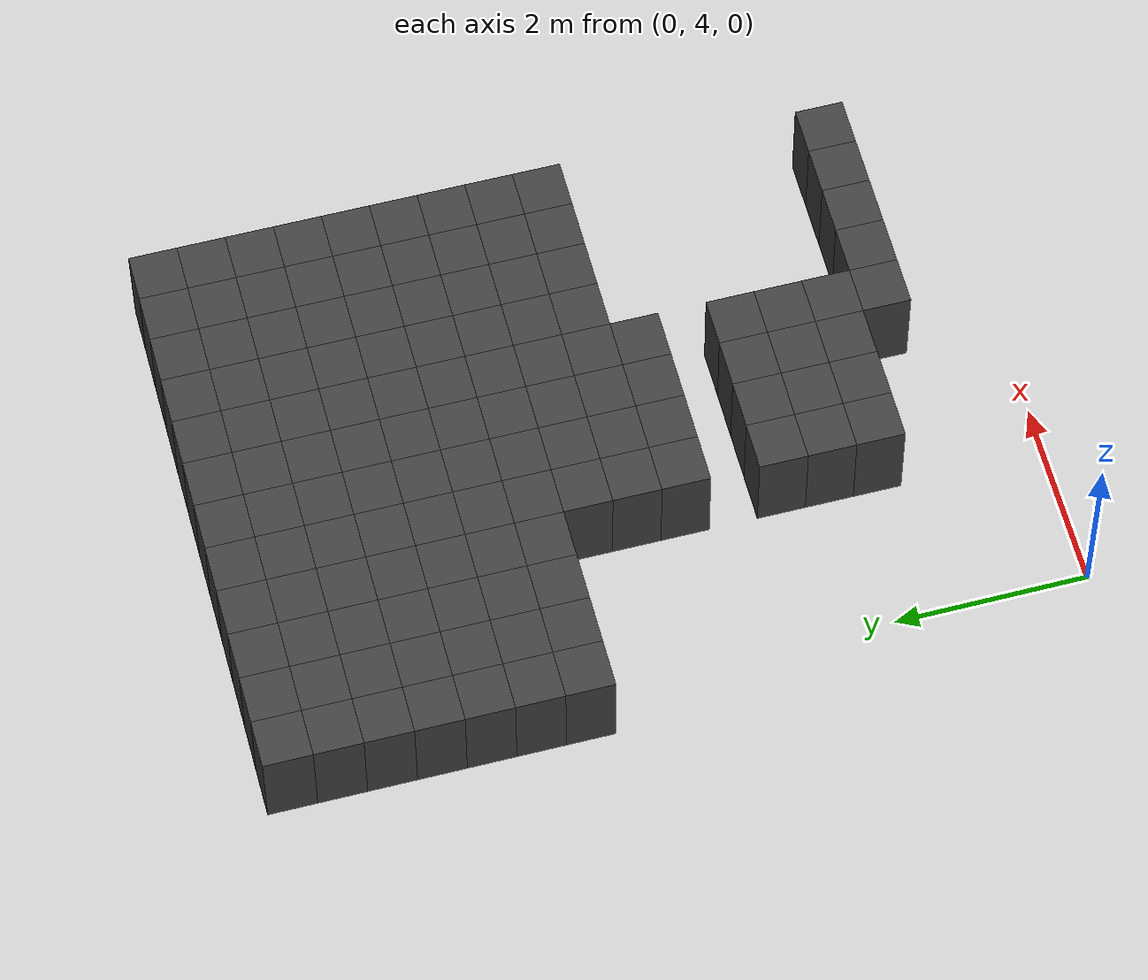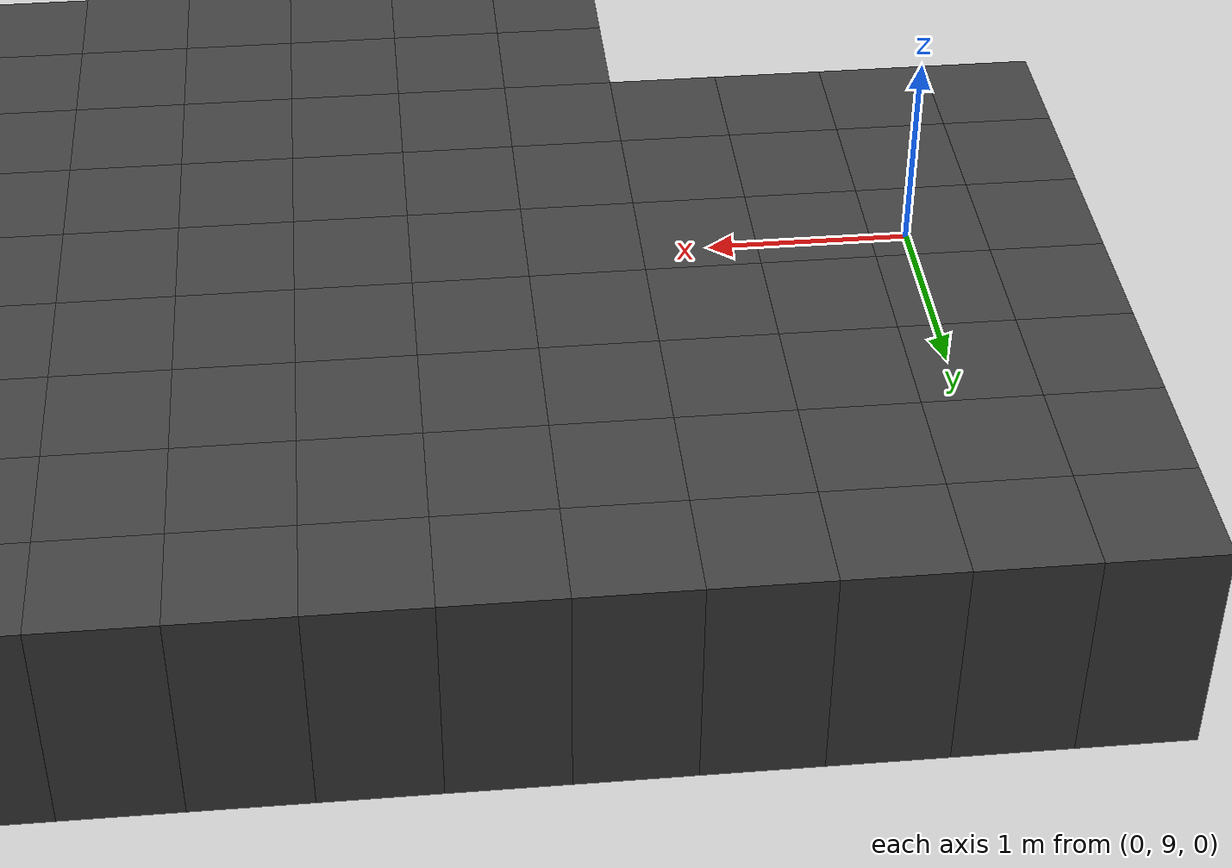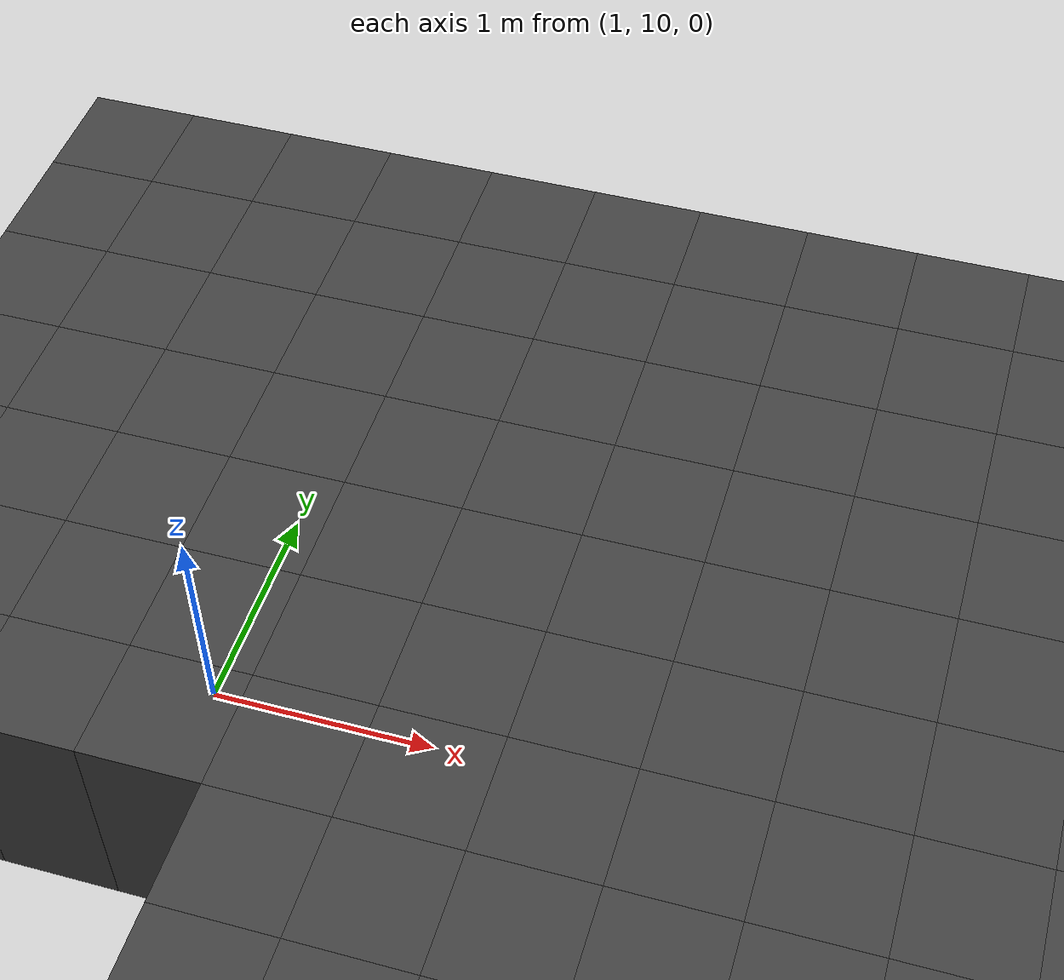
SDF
<sdf version="1.7">
 <world name="map_12885">
  <model name="ground_plane">
   <static>true</static>
   <link name="link">
    <collision name="collision">
     <geometry><plane><normal>0 0 1</normal><size>200 200</size></plane></geometry>
    </collision>
    <visual name="visual">
     <geometry><plane><normal>0 0 1</normal><size>200 200</size></plane></geometry>
     <material><ambient>0.8 0.8 0.8 1</ambient><diffuse>0.8 0.8 0.8 1</diffuse></material>
    </visual>
   </link>
  </model>
  <model name="maze_environment">
   <static>true</static>
   <link name="wall_24">
    <pose>-0.250 12.250 0.500 0 0 0</pose>
    <collision name="col"><geometry><box><size>0.5 0.5 1.0</size></box></geometry></collision>
    <visual name="vis">
     <geometry><box><size>0.5 0.5 1.0</size></box></geometry>
     <material><ambient>0.15 0.15 0.15 1</ambient><diffuse>0.25 0.25 0.25 1</diffuse></material>
    </visual>
   </link>
   <link name="wall_25">
    <pose>0.250 12.250 0.500 0 0 0</pose>
    <collision name="col"><geometry><box><size>0.5 0.5 1.0</size></box></geometry></collision>
    <visual name="vis">
     <geometry><box><size>0.5 0.5 1.0</size></box></geometry>
     <material><ambient>0.15 0.15 0.15 1</ambient><diffuse>0.25 0.25 0.25 1</diffuse></material>
    </visual>
   </link>
   <link name="wall_26">
    <pose>0.750 12.250 0.500 0 0 0</pose>
    <collision name="col"><geometry><box><size>0.5 0.5 1.0</size></box></geometry></collision>
    <visual name="vis">
     <geometry><box><size>0.5 0.5 1.0</size></box></geometry>
     <material><ambient>0.15 0.15 0.15 1</ambient><diffuse>0.25 0.25 0.25 1</diffuse></material>
    </visual>
   </link>
   <link name="wall_27">
    <pose>1.250 12.250 0.500 0 0 0</pose>
    <collision name="col"><geometry><box><size>0.5 0.5 1.0</size></box></geometry></collision>
    <visual name="vis">
     <geometry><box><size>0.5 0.5 1.0</size></box></geometry>
     <material><ambient>0.15 0.15 0.15 1</ambient><diffuse>0.25 0.25 0.25 1</diffuse></material>
    </visual>
   </link>
   <link name="wall_28">
    <pose>1.750 12.250 0.500 0 0 0</pose>
    <collision name="col"><geometry><box><size>0.5 0.5 1.0</size></box></geometry></collision>
    <visual name="vis">
     <geometry><box><size>0.5 0.5 1.0</size></box></geometry>
     <material><ambient>0.15 0.15 0.15 1</ambient><diffuse>0.25 0.25 0.25 1</diffuse></material>
    </visual>
   </link>
   <link name="wall_29">
    <pose>2.250 12.250 0.500 0 0 0</pose>
    <collision name="col"><geometry><box><size>0.5 0.5 1.0</size></box></geometry></collision>
    <visual name="vis">
     <geometry><box><size>0.5 0.5 1.0</size></box></geometry>
     <material><ambient>0.15 0.15 0.15 1</ambient><diffuse>0.25 0.25 0.25 1</diffuse></material>
    </visual>
   </link>
   <link name="wall_30">
    <pose>2.750 12.250 0.500 0 0 0</pose>
    <collision name="col"><geometry><box><size>0.5 0.5 1.0</size></box></geometry></collision>
    <visual name="vis">
     <geometry><box><size>0.5 0.5 1.0</size></box></geometry>
     <material><ambient>0.15 0.15 0.15 1</ambient><diffuse>0.25 0.25 0.25 1</diffuse></material>
    </visual>
   </link>
   <link name="wall_31">
    <pose>3.250 12.250 0.500 0 0 0</pose>
    <collision name="col"><geometry><box><size>0.5 0.5 1.0</size></box></geometry></collision>
    <visual name="vis">
     <geometry><box><size>0.5 0.5 1.0</size></box></geometry>
     <material><ambient>0.15 0.15 0.15 1</ambient><diffuse>0.25 0.25 0.25 1</diffuse></material>
    </visual>
   </link>
   <link name="wall_32">
    <pose>3.750 12.250 0.500 0 0 0</pose>
    <collision name="col"><geometry><box><size>0.5 0.5 1.0</size></box></geometry></collision>
    <visual name="vis">
     <geometry><box><size>0.5 0.5 1.0</size></box></geometry>
     <material><ambient>0.15 0.15 0.15 1</ambient><diffuse>0.25 0.25 0.25 1</diffuse></material>
    </visual>
   </link>
   <link name="wall_33">
    <pose>4.250 12.250 0.500 0 0 0</pose>
    <collision name="col"><geometry><box><size>0.5 0.5 1.0</size></box></geometry></collision>
    <visual name="vis">
     <geometry><box><size>0.5 0.5 1.0</size></box></geometry>
     <material><ambient>0.15 0.15 0.15 1</ambient><diffuse>0.25 0.25 0.25 1</diffuse></material>
    </visual>
   </link>
   <link name="wall_34">
    <pose>4.750 12.250 0.500 0 0 0</pose>
    <collision name="col"><geometry><box><size>0.5 0.5 1.0</size></box></geometry></collision>
    <visual name="vis">
     <geometry><box><size>0.5 0.5 1.0</size></box></geometry>
     <material><ambient>0.15 0.15 0.15 1</ambient><diffuse>0.25 0.25 0.25 1</diffuse></material>
    </visual>
   </link>
   <link name="wall_35">
    <pose>5.250 12.250 0.500 0 0 0</pose>
    <collision name="col"><geometry><box><size>0.5 0.5 1.0</size></box></geometry></collision>
    <visual name="vis">
     <geometry><box><size>0.5 0.5 1.0</size></box></geometry>
     <material><ambient>0.15 0.15 0.15 1</ambient><diffuse>0.25 0.25 0.25 1</diffuse></material>
    </visual>
   </link>
   <link name="wall_71">
    <pose>-0.250 11.750 0.500 0 0 0</pose>
    <collision name="col"><geometry><box><size>0.5 0.5 1.0</size></box></geometry></collision>
    <visual name="vis">
     <geometry><box><size>0.5 0.5 1.0</size></box></geometry>
     <material><ambient>0.15 0.15 0.15 1</ambient><diffuse>0.25 0.25 0.25 1</diffuse></material>
    </visual>
   </link>
   <link name="wall_72">
    <pose>0.250 11.750 0.500 0 0 0</pose>
    <collision name="col"><geometry><box><size>0.5 0.5 1.0</size></box></geometry></collision>
    <visual name="vis">
     <geometry><box><size>0.5 0.5 1.0</size></box></geometry>
     <material><ambient>0.15 0.15 0.15 1</ambient><diffuse>0.25 0.25 0.25 1</diffuse></material>
    </visual>
   </link>
   <link name="wall_73">
    <pose>0.750 11.750 0.500 0 0 0</pose>
    <collision name="col"><geometry><box><size>0.5 0.5 1.0</size></box></geometry></collision>
    <visual name="vis">
     <geometry><box><size>0.5 0.5 1.0</size></box></geometry>
     <material><ambient>0.15 0.15 0.15 1</ambient><diffuse>0.25 0.25 0.25 1</diffuse></material>
    </visual>
   </link>
   <link name="wall_74">
    <pose>1.250 11.750 0.500 0 0 0</pose>
    <collision name="col"><geometry><box><size>0.5 0.5 1.0</size></box></geometry></collision>
    <visual name="vis">
     <geometry><box><size>0.5 0.5 1.0</size></box></geometry>
     <material><ambient>0.15 0.15 0.15 1</ambient><diffuse>0.25 0.25 0.25 1</diffuse></material>
    </visual>
   </link>
   <link name="wall_75">
    <pose>1.750 11.750 0.500 0 0 0</pose>
    <collision name="col"><geometry><box><size>0.5 0.5 1.0</size></box></geometry></collision>
    <visual name="vis">
     <geometry><box><size>0.5 0.5 1.0</size></box></geometry>
     <material><ambient>0.15 0.15 0.15 1</ambient><diffuse>0.25 0.25 0.25 1</diffuse></material>
    </visual>
   </link>
   <link name="wall_76">
    <pose>2.250 11.750 0.500 0 0 0</pose>
    <collision name="col"><geometry><box><size>0.5 0.5 1.0</size></box></geometry></collision>
    <visual name="vis">
     <geometry><box><size>0.5 0.5 1.0</size></box></geometry>
     <material><ambient>0.15 0.15 0.15 1</ambient><diffuse>0.25 0.25 0.25 1</diffuse></material>
    </visual>
   </link>
   <link name="wall_77">
    <pose>2.750 11.750 0.500 0 0 0</pose>
    <collision name="col"><geometry><box><size>0.5 0.5 1.0</size></box></geometry></collision>
    <visual name="vis">
     <geometry><box><size>0.5 0.5 1.0</size></box></geometry>
     <material><ambient>0.15 0.15 0.15 1</ambient><diffuse>0.25 0.25 0.25 1</diffuse></material>
    </visual>
   </link>
   <link name="wall_78">
    <pose>3.250 11.750 0.500 0 0 0</pose>
    <collision name="col"><geometry><box><size>0.5 0.5 1.0</size></box></geometry></collision>
    <visual name="vis">
     <geometry><box><size>0.5 0.5 1.0</size></box></geometry>
     <material><ambient>0.15 0.15 0.15 1</ambient><diffuse>0.25 0.25 0.25 1</diffuse></material>
    </visual>
   </link>
   <link name="wall_79">
    <pose>3.750 11.750 0.500 0 0 0</pose>
    <collision name="col"><geometry><box><size>0.5 0.5 1.0</size></box></geometry></collision>
    <visual name="vis">
     <geometry><box><size>0.5 0.5 1.0</size></box></geometry>
     <material><ambient>0.15 0.15 0.15 1</ambient><diffuse>0.25 0.25 0.25 1</diffuse></material>
    </visual>
   </link>
   <link name="wall_80">
    <pose>4.250 11.750 0.500 0 0 0</pose>
    <collision name="col"><geometry><box><size>0.5 0.5 1.0</size></box></geometry></collision>
    <visual name="vis">
     <geometry><box><size>0.5 0.5 1.0</size></box></geometry>
     <material><ambient>0.15 0.15 0.15 1</ambient><diffuse>0.25 0.25 0.25 1</diffuse></material>
    </visual>
   </link>
   <link name="wall_81">
    <pose>4.750 11.750 0.500 0 0 0</pose>
    <collision name="col"><geometry><box><size>0.5 0.5 1.0</size></box></geometry></collision>
    <visual name="vis">
     <geometry><box><size>0.5 0.5 1.0</size></box></geometry>
     <material><ambient>0.15 0.15 0.15 1</ambient><diffuse>0.25 0.25 0.25 1</diffuse></material>
    </visual>
   </link>
   <link name="wall_82">
    <pose>5.250 11.750 0.500 0 0 0</pose>
    <collision name="col"><geometry><box><size>0.5 0.5 1.0</size></box></geometry></collision>
    <visual name="vis">
     <geometry><box><size>0.5 0.5 1.0</size></box></geometry>
     <material><ambient>0.15 0.15 0.15 1</ambient><diffuse>0.25 0.25 0.25 1</diffuse></material>
    </visual>
   </link>
   <link name="wall_118">
    <pose>-0.250 11.250 0.500 0 0 0</pose>
    <collision name="col"><geometry><box><size>0.5 0.5 1.0</size></box></geometry></collision>
    <visual name="vis">
     <geometry><box><size>0.5 0.5 1.0</size></box></geometry>
     <material><ambient>0.15 0.15 0.15 1</ambient><diffuse>0.25 0.25 0.25 1</diffuse></material>
    </visual>
   </link>
   <link name="wall_119">
    <pose>0.250 11.250 0.500 0 0 0</pose>
    <collision name="col"><geometry><box><size>0.5 0.5 1.0</size></box></geometry></collision>
    <visual name="vis">
     <geometry><box><size>0.5 0.5 1.0</size></box></geometry>
     <material><ambient>0.15 0.15 0.15 1</ambient><diffuse>0.25 0.25 0.25 1</diffuse></material>
    </visual>
   </link>
   <link name="wall_120">
    <pose>0.750 11.250 0.500 0 0 0</pose>
    <collision name="col"><geometry><box><size>0.5 0.5 1.0</size></box></geometry></collision>
    <visual name="vis">
     <geometry><box><size>0.5 0.5 1.0</size></box></geometry>
     <material><ambient>0.15 0.15 0.15 1</ambient><diffuse>0.25 0.25 0.25 1</diffuse></material>
    </visual>
   </link>
   <link name="wall_121">
    <pose>1.250 11.250 0.500 0 0 0</pose>
    <collision name="col"><geometry><box><size>0.5 0.5 1.0</size></box></geometry></collision>
    <visual name="vis">
     <geometry><box><size>0.5 0.5 1.0</size></box></geometry>
     <material><ambient>0.15 0.15 0.15 1</ambient><diffuse>0.25 0.25 0.25 1</diffuse></material>
    </visual>
   </link>
   <link name="wall_122">
    <pose>1.750 11.250 0.500 0 0 0</pose>
    <collision name="col"><geometry><box><size>0.5 0.5 1.0</size></box></geometry></collision>
    <visual name="vis">
     <geometry><box><size>0.5 0.5 1.0</size></box></geometry>
     <material><ambient>0.15 0.15 0.15 1</ambient><diffuse>0.25 0.25 0.25 1</diffuse></material>
    </visual>
   </link>
   <link name="wall_123">
    <pose>2.250 11.250 0.500 0 0 0</pose>
    <collision name="col"><geometry><box><size>0.5 0.5 1.0</size></box></geometry></collision>
    <visual name="vis">
     <geometry><box><size>0.5 0.5 1.0</size></box></geometry>
     <material><ambient>0.15 0.15 0.15 1</ambient><diffuse>0.25 0.25 0.25 1</diffuse></material>
    </visual>
   </link>
   <link name="wall_124">
    <pose>2.750 11.250 0.500 0 0 0</pose>
    <collision name="col"><geometry><box><size>0.5 0.5 1.0</size></box></geometry></collision>
    <visual name="vis">
     <geometry><box><size>0.5 0.5 1.0</size></box></geometry>
     <material><ambient>0.15 0.15 0.15 1</ambient><diffuse>0.25 0.25 0.25 1</diffuse></material>
    </visual>
   </link>
   <link name="wall_125">
    <pose>3.250 11.250 0.500 0 0 0</pose>
    <collision name="col"><geometry><box><size>0.5 0.5 1.0</size></box></geometry></collision>
    <visual name="vis">
     <geometry><box><size>0.5 0.5 1.0</size></box></geometry>
     <material><ambient>0.15 0.15 0.15 1</ambient><diffuse>0.25 0.25 0.25 1</diffuse></material>
    </visual>
   </link>
   <link name="wall_126">
    <pose>3.750 11.250 0.500 0 0 0</pose>
    <collision name="col"><geometry><box><size>0.5 0.5 1.0</size></box></geometry></collision>
    <visual name="vis">
     <geometry><box><size>0.5 0.5 1.0</size></box></geometry>
     <material><ambient>0.15 0.15 0.15 1</ambient><diffuse>0.25 0.25 0.25 1</diffuse></material>
    </visual>
   </link>
   <link name="wall_127">
    <pose>4.250 11.250 0.500 0 0 0</pose>
    <collision name="col"><geometry><box><size>0.5 0.5 1.0</size></box></geometry></collision>
    <visual name="vis">
     <geometry><box><size>0.5 0.5 1.0</size></box></geometry>
     <material><ambient>0.15 0.15 0.15 1</ambient><diffuse>0.25 0.25 0.25 1</diffuse></material>
    </visual>
   </link>
   <link name="wall_128">
    <pose>4.750 11.250 0.500 0 0 0</pose>
    <collision name="col"><geometry><box><size>0.5 0.5 1.0</size></box></geometry></collision>
    <visual name="vis">
     <geometry><box><size>0.5 0.5 1.0</size></box></geometry>
     <material><ambient>0.15 0.15 0.15 1</ambient><diffuse>0.25 0.25 0.25 1</diffuse></material>
    </visual>
   </link>
   <link name="wall_129">
    <pose>5.250 11.250 0.500 0 0 0</pose>
    <collision name="col"><geometry><box><size>0.5 0.5 1.0</size></box></geometry></collision>
    <visual name="vis">
     <geometry><box><size>0.5 0.5 1.0</size></box></geometry>
     <material><ambient>0.15 0.15 0.15 1</ambient><diffuse>0.25 0.25 0.25 1</diffuse></material>
    </visual>
   </link>
   <link name="wall_165">
    <pose>-0.250 10.750 0.500 0 0 0</pose>
    <collision name="col"><geometry><box><size>0.5 0.5 1.0</size></box></geometry></collision>
    <visual name="vis">
     <geometry><box><size>0.5 0.5 1.0</size></box></geometry>
     <material><ambient>0.15 0.15 0.15 1</ambient><diffuse>0.25 0.25 0.25 1</diffuse></material>
    </visual>
   </link>
   <link name="wall_166">
    <pose>0.250 10.750 0.500 0 0 0</pose>
    <collision name="col"><geometry><box><size>0.5 0.5 1.0</size></box></geometry></collision>
    <visual name="vis">
     <geometry><box><size>0.5 0.5 1.0</size></box></geometry>
     <material><ambient>0.15 0.15 0.15 1</ambient><diffuse>0.25 0.25 0.25 1</diffuse></material>
    </visual>
   </link>
   <link name="wall_167">
    <pose>0.750 10.750 0.500 0 0 0</pose>
    <collision name="col"><geometry><box><size>0.5 0.5 1.0</size></box></geometry></collision>
    <visual name="vis">
     <geometry><box><size>0.5 0.5 1.0</size></box></geometry>
     <material><ambient>0.15 0.15 0.15 1</ambient><diffuse>0.25 0.25 0.25 1</diffuse></material>
    </visual>
   </link>
   <link name="wall_168">
    <pose>1.250 10.750 0.500 0 0 0</pose>
    <collision name="col"><geometry><box><size>0.5 0.5 1.0</size></box></geometry></collision>
    <visual name="vis">
     <geometry><box><size>0.5 0.5 1.0</size></box></geometry>
     <material><ambient>0.15 0.15 0.15 1</ambient><diffuse>0.25 0.25 0.25 1</diffuse></material>
    </visual>
   </link>
   <link name="wall_169">
    <pose>1.750 10.750 0.500 0 0 0</pose>
    <collision name="col"><geometry><box><size>0.5 0.5 1.0</size></box></geometry></collision>
    <visual name="vis">
     <geometry><box><size>0.5 0.5 1.0</size></box></geometry>
     <material><ambient>0.15 0.15 0.15 1</ambient><diffuse>0.25 0.25 0.25 1</diffuse></material>
    </visual>
   </link>
   <link name="wall_170">
    <pose>2.250 10.750 0.500 0 0 0</pose>
    <collision name="col"><geometry><box><size>0.5 0.5 1.0</size></box></geometry></collision>
    <visual name="vis">
     <geometry><box><size>0.5 0.5 1.0</size></box></geometry>
     <material><ambient>0.15 0.15 0.15 1</ambient><diffuse>0.25 0.25 0.25 1</diffuse></material>
    </visual>
   </link>
   <link name="wall_171">
    <pose>2.750 10.750 0.500 0 0 0</pose>
    <collision name="col"><geometry><box><size>0.5 0.5 1.0</size></box></geometry></collision>
    <visual name="vis">
     <geometry><box><size>0.5 0.5 1.0</size></box></geometry>
     <material><ambient>0.15 0.15 0.15 1</ambient><diffuse>0.25 0.25 0.25 1</diffuse></material>
    </visual>
   </link>
   <link name="wall_172">
    <pose>3.250 10.750 0.500 0 0 0</pose>
    <collision name="col"><geometry><box><size>0.5 0.5 1.0</size></box></geometry></collision>
    <visual name="vis">
     <geometry><box><size>0.5 0.5 1.0</size></box></geometry>
     <material><ambient>0.15 0.15 0.15 1</ambient><diffuse>0.25 0.25 0.25 1</diffuse></material>
    </visual>
   </link>
   <link name="wall_173">
    <pose>3.750 10.750 0.500 0 0 0</pose>
    <collision name="col"><geometry><box><size>0.5 0.5 1.0</size></box></geometry></collision>
    <visual name="vis">
     <geometry><box><size>0.5 0.5 1.0</size></box></geometry>
     <material><ambient>0.15 0.15 0.15 1</ambient><diffuse>0.25 0.25 0.25 1</diffuse></material>
    </visual>
   </link>
   <link name="wall_174">
    <pose>4.250 10.750 0.500 0 0 0</pose>
    <collision name="col"><geometry><box><size>0.5 0.5 1.0</size></box></geometry></collision>
    <visual name="vis">
     <geometry><box><size>0.5 0.5 1.0</size></box></geometry>
     <material><ambient>0.15 0.15 0.15 1</ambient><diffuse>0.25 0.25 0.25 1</diffuse></material>
    </visual>
   </link>
   <link name="wall_175">
    <pose>4.750 10.750 0.500 0 0 0</pose>
    <collision name="col"><geometry><box><size>0.5 0.5 1.0</size></box></geometry></collision>
    <visual name="vis">
     <geometry><box><size>0.5 0.5 1.0</size></box></geometry>
     <material><ambient>0.15 0.15 0.15 1</ambient><diffuse>0.25 0.25 0.25 1</diffuse></material>
    </visual>
   </link>
   <link name="wall_176">
    <pose>5.250 10.750 0.500 0 0 0</pose>
    <collision name="col"><geometry><box><size>0.5 0.5 1.0</size></box></geometry></collision>
    <visual name="vis">
     <geometry><box><size>0.5 0.5 1.0</size></box></geometry>
     <material><ambient>0.15 0.15 0.15 1</ambient><diffuse>0.25 0.25 0.25 1</diffuse></material>
    </visual>
   </link>
   <link name="wall_214">
    <pose>-0.250 10.250 0.500 0 0 0</pose>
    <collision name="col"><geometry><box><size>0.5 0.5 1.0</size></box></geometry></collision>
    <visual name="vis">
     <geometry><box><size>0.5 0.5 1.0</size></box></geometry>
     <material><ambient>0.15 0.15 0.15 1</ambient><diffuse>0.25 0.25 0.25 1</diffuse></material>
    </visual>
   </link>
   <link name="wall_215">
    <pose>0.250 10.250 0.500 0 0 0</pose>
    <collision name="col"><geometry><box><size>0.5 0.5 1.0</size></box></geometry></collision>
    <visual name="vis">
     <geometry><box><size>0.5 0.5 1.0</size></box></geometry>
     <material><ambient>0.15 0.15 0.15 1</ambient><diffuse>0.25 0.25 0.25 1</diffuse></material>
    </visual>
   </link>
   <link name="wall_216">
    <pose>0.750 10.250 0.500 0 0 0</pose>
    <collision name="col"><geometry><box><size>0.5 0.5 1.0</size></box></geometry></collision>
    <visual name="vis">
     <geometry><box><size>0.5 0.5 1.0</size></box></geometry>
     <material><ambient>0.15 0.15 0.15 1</ambient><diffuse>0.25 0.25 0.25 1</diffuse></material>
    </visual>
   </link>
   <link name="wall_217">
    <pose>1.250 10.250 0.500 0 0 0</pose>
    <collision name="col"><geometry><box><size>0.5 0.5 1.0</size></box></geometry></collision>
    <visual name="vis">
     <geometry><box><size>0.5 0.5 1.0</size></box></geometry>
     <material><ambient>0.15 0.15 0.15 1</ambient><diffuse>0.25 0.25 0.25 1</diffuse></material>
    </visual>
   </link>
   <link name="wall_218">
    <pose>1.750 10.250 0.500 0 0 0</pose>
    <collision name="col"><geometry><box><size>0.5 0.5 1.0</size></box></geometry></collision>
    <visual name="vis">
     <geometry><box><size>0.5 0.5 1.0</size></box></geometry>
     <material><ambient>0.15 0.15 0.15 1</ambient><diffuse>0.25 0.25 0.25 1</diffuse></material>
    </visual>
   </link>
   <link name="wall_219">
    <pose>2.250 10.250 0.500 0 0 0</pose>
    <collision name="col"><geometry><box><size>0.5 0.5 1.0</size></box></geometry></collision>
    <visual name="vis">
     <geometry><box><size>0.5 0.5 1.0</size></box></geometry>
     <material><ambient>0.15 0.15 0.15 1</ambient><diffuse>0.25 0.25 0.25 1</diffuse></material>
    </visual>
   </link>
   <link name="wall_220">
    <pose>2.750 10.250 0.500 0 0 0</pose>
    <collision name="col"><geometry><box><size>0.5 0.5 1.0</size></box></geometry></collision>
    <visual name="vis">
     <geometry><box><size>0.5 0.5 1.0</size></box></geometry>
     <material><ambient>0.15 0.15 0.15 1</ambient><diffuse>0.25 0.25 0.25 1</diffuse></material>
    </visual>
   </link>
   <link name="wall_221">
    <pose>3.250 10.250 0.500 0 0 0</pose>
    <collision name="col"><geometry><box><size>0.5 0.5 1.0</size></box></geometry></collision>
    <visual name="vis">
     <geometry><box><size>0.5 0.5 1.0</size></box></geometry>
     <material><ambient>0.15 0.15 0.15 1</ambient><diffuse>0.25 0.25 0.25 1</diffuse></material>
    </visual>
   </link>
   <link name="wall_222">
    <pose>3.750 10.250 0.500 0 0 0</pose>
    <collision name="col"><geometry><box><size>0.5 0.5 1.0</size></box></geometry></collision>
    <visual name="vis">
     <geometry><box><size>0.5 0.5 1.0</size></box></geometry>
     <material><ambient>0.15 0.15 0.15 1</ambient><diffuse>0.25 0.25 0.25 1</diffuse></material>
    </visual>
   </link>
   <link name="wall_223">
    <pose>4.250 10.250 0.500 0 0 0</pose>
    <collision name="col"><geometry><box><size>0.5 0.5 1.0</size></box></geometry></collision>
    <visual name="vis">
     <geometry><box><size>0.5 0.5 1.0</size></box></geometry>
     <material><ambient>0.15 0.15 0.15 1</ambient><diffuse>0.25 0.25 0.25 1</diffuse></material>
    </visual>
   </link>
   <link name="wall_224">
    <pose>4.750 10.250 0.500 0 0 0</pose>
    <collision name="col"><geometry><box><size>0.5 0.5 1.0</size></box></geometry></collision>
    <visual name="vis">
     <geometry><box><size>0.5 0.5 1.0</size></box></geometry>
     <material><ambient>0.15 0.15 0.15 1</ambient><diffuse>0.25 0.25 0.25 1</diffuse></material>
    </visual>
   </link>
   <link name="wall_225">
    <pose>5.250 10.250 0.500 0 0 0</pose>
    <collision name="col"><geometry><box><size>0.5 0.5 1.0</size></box></geometry></collision>
    <visual name="vis">
     <geometry><box><size>0.5 0.5 1.0</size></box></geometry>
     <material><ambient>0.15 0.15 0.15 1</ambient><diffuse>0.25 0.25 0.25 1</diffuse></material>
    </visual>
   </link>
   <link name="wall_263">
    <pose>-0.250 9.750 0.500 0 0 0</pose>
    <collision name="col"><geometry><box><size>0.5 0.5 1.0</size></box></geometry></collision>
    <visual name="vis">
     <geometry><box><size>0.5 0.5 1.0</size></box></geometry>
     <material><ambient>0.15 0.15 0.15 1</ambient><diffuse>0.25 0.25 0.25 1</diffuse></material>
    </visual>
   </link>
   <link name="wall_264">
    <pose>0.250 9.750 0.500 0 0 0</pose>
    <collision name="col"><geometry><box><size>0.5 0.5 1.0</size></box></geometry></collision>
    <visual name="vis">
     <geometry><box><size>0.5 0.5 1.0</size></box></geometry>
     <material><ambient>0.15 0.15 0.15 1</ambient><diffuse>0.25 0.25 0.25 1</diffuse></material>
    </visual>
   </link>
   <link name="wall_265">
    <pose>0.750 9.750 0.500 0 0 0</pose>
    <collision name="col"><geometry><box><size>0.5 0.5 1.0</size></box></geometry></collision>
    <visual name="vis">
     <geometry><box><size>0.5 0.5 1.0</size></box></geometry>
     <material><ambient>0.15 0.15 0.15 1</ambient><diffuse>0.25 0.25 0.25 1</diffuse></material>
    </visual>
   </link>
   <link name="wall_266">
    <pose>1.250 9.750 0.500 0 0 0</pose>
    <collision name="col"><geometry><box><size>0.5 0.5 1.0</size></box></geometry></collision>
    <visual name="vis">
     <geometry><box><size>0.5 0.5 1.0</size></box></geometry>
     <material><ambient>0.15 0.15 0.15 1</ambient><diffuse>0.25 0.25 0.25 1</diffuse></material>
    </visual>
   </link>
   <link name="wall_267">
    <pose>1.750 9.750 0.500 0 0 0</pose>
    <collision name="col"><geometry><box><size>0.5 0.5 1.0</size></box></geometry></collision>
    <visual name="vis">
     <geometry><box><size>0.5 0.5 1.0</size></box></geometry>
     <material><ambient>0.15 0.15 0.15 1</ambient><diffuse>0.25 0.25 0.25 1</diffuse></material>
    </visual>
   </link>
   <link name="wall_268">
    <pose>2.250 9.750 0.500 0 0 0</pose>
    <collision name="col"><geometry><box><size>0.5 0.5 1.0</size></box></geometry></collision>
    <visual name="vis">
     <geometry><box><size>0.5 0.5 1.0</size></box></geometry>
     <material><ambient>0.15 0.15 0.15 1</ambient><diffuse>0.25 0.25 0.25 1</diffuse></material>
    </visual>
   </link>
   <link name="wall_269">
    <pose>2.750 9.750 0.500 0 0 0</pose>
    <collision name="col"><geometry><box><size>0.5 0.5 1.0</size></box></geometry></collision>
    <visual name="vis">
     <geometry><box><size>0.5 0.5 1.0</size></box></geometry>
     <material><ambient>0.15 0.15 0.15 1</ambient><diffuse>0.25 0.25 0.25 1</diffuse></material>
    </visual>
   </link>
   <link name="wall_270">
    <pose>3.250 9.750 0.500 0 0 0</pose>
    <collision name="col"><geometry><box><size>0.5 0.5 1.0</size></box></geometry></collision>
    <visual name="vis">
     <geometry><box><size>0.5 0.5 1.0</size></box></geometry>
     <material><ambient>0.15 0.15 0.15 1</ambient><diffuse>0.25 0.25 0.25 1</diffuse></material>
    </visual>
   </link>
   <link name="wall_271">
    <pose>3.750 9.750 0.500 0 0 0</pose>
    <collision name="col"><geometry><box><size>0.5 0.5 1.0</size></box></geometry></collision>
    <visual name="vis">
     <geometry><box><size>0.5 0.5 1.0</size></box></geometry>
     <material><ambient>0.15 0.15 0.15 1</ambient><diffuse>0.25 0.25 0.25 1</diffuse></material>
    </visual>
   </link>
   <link name="wall_272">
    <pose>4.250 9.750 0.500 0 0 0</pose>
    <collision name="col"><geometry><box><size>0.5 0.5 1.0</size></box></geometry></collision>
    <visual name="vis">
     <geometry><box><size>0.5 0.5 1.0</size></box></geometry>
     <material><ambient>0.15 0.15 0.15 1</ambient><diffuse>0.25 0.25 0.25 1</diffuse></material>
    </visual>
   </link>
   <link name="wall_273">
    <pose>4.750 9.750 0.500 0 0 0</pose>
    <collision name="col"><geometry><box><size>0.5 0.5 1.0</size></box></geometry></collision>
    <visual name="vis">
     <geometry><box><size>0.5 0.5 1.0</size></box></geometry>
     <material><ambient>0.15 0.15 0.15 1</ambient><diffuse>0.25 0.25 0.25 1</diffuse></material>
    </visual>
   </link>
   <link name="wall_274">
    <pose>5.250 9.750 0.500 0 0 0</pose>
    <collision name="col"><geometry><box><size>0.5 0.5 1.0</size></box></geometry></collision>
    <visual name="vis">
     <geometry><box><size>0.5 0.5 1.0</size></box></geometry>
     <material><ambient>0.15 0.15 0.15 1</ambient><diffuse>0.25 0.25 0.25 1</diffuse></material>
    </visual>
   </link>
   <link name="wall_312">
    <pose>-0.250 9.250 0.500 0 0 0</pose>
    <collision name="col"><geometry><box><size>0.5 0.5 1.0</size></box></geometry></collision>
    <visual name="vis">
     <geometry><box><size>0.5 0.5 1.0</size></box></geometry>
     <material><ambient>0.15 0.15 0.15 1</ambient><diffuse>0.25 0.25 0.25 1</diffuse></material>
    </visual>
   </link>
   <link name="wall_313">
    <pose>0.250 9.250 0.500 0 0 0</pose>
    <collision name="col"><geometry><box><size>0.5 0.5 1.0</size></box></geometry></collision>
    <visual name="vis">
     <geometry><box><size>0.5 0.5 1.0</size></box></geometry>
     <material><ambient>0.15 0.15 0.15 1</ambient><diffuse>0.25 0.25 0.25 1</diffuse></material>
    </visual>
   </link>
   <link name="wall_314">
    <pose>0.750 9.250 0.500 0 0 0</pose>
    <collision name="col"><geometry><box><size>0.5 0.5 1.0</size></box></geometry></collision>
    <visual name="vis">
     <geometry><box><size>0.5 0.5 1.0</size></box></geometry>
     <material><ambient>0.15 0.15 0.15 1</ambient><diffuse>0.25 0.25 0.25 1</diffuse></material>
    </visual>
   </link>
   <link name="wall_315">
    <pose>1.250 9.250 0.500 0 0 0</pose>
    <collision name="col"><geometry><box><size>0.5 0.5 1.0</size></box></geometry></collision>
    <visual name="vis">
     <geometry><box><size>0.5 0.5 1.0</size></box></geometry>
     <material><ambient>0.15 0.15 0.15 1</ambient><diffuse>0.25 0.25 0.25 1</diffuse></material>
    </visual>
   </link>
   <link name="wall_316">
    <pose>1.750 9.250 0.500 0 0 0</pose>
    <collision name="col"><geometry><box><size>0.5 0.5 1.0</size></box></geometry></collision>
    <visual name="vis">
     <geometry><box><size>0.5 0.5 1.0</size></box></geometry>
     <material><ambient>0.15 0.15 0.15 1</ambient><diffuse>0.25 0.25 0.25 1</diffuse></material>
    </visual>
   </link>
   <link name="wall_317">
    <pose>2.250 9.250 0.500 0 0 0</pose>
    <collision name="col"><geometry><box><size>0.5 0.5 1.0</size></box></geometry></collision>
    <visual name="vis">
     <geometry><box><size>0.5 0.5 1.0</size></box></geometry>
     <material><ambient>0.15 0.15 0.15 1</ambient><diffuse>0.25 0.25 0.25 1</diffuse></material>
    </visual>
   </link>
   <link name="wall_318">
    <pose>2.750 9.250 0.500 0 0 0</pose>
    <collision name="col"><geometry><box><size>0.5 0.5 1.0</size></box></geometry></collision>
    <visual name="vis">
     <geometry><box><size>0.5 0.5 1.0</size></box></geometry>
     <material><ambient>0.15 0.15 0.15 1</ambient><diffuse>0.25 0.25 0.25 1</diffuse></material>
    </visual>
   </link>
   <link name="wall_319">
    <pose>3.250 9.250 0.500 0 0 0</pose>
    <collision name="col"><geometry><box><size>0.5 0.5 1.0</size></box></geometry></collision>
    <visual name="vis">
     <geometry><box><size>0.5 0.5 1.0</size></box></geometry>
     <material><ambient>0.15 0.15 0.15 1</ambient><diffuse>0.25 0.25 0.25 1</diffuse></material>
    </visual>
   </link>
   <link name="wall_320">
    <pose>3.750 9.250 0.500 0 0 0</pose>
    <collision name="col"><geometry><box><size>0.5 0.5 1.0</size></box></geometry></collision>
    <visual name="vis">
     <geometry><box><size>0.5 0.5 1.0</size></box></geometry>
     <material><ambient>0.15 0.15 0.15 1</ambient><diffuse>0.25 0.25 0.25 1</diffuse></material>
    </visual>
   </link>
   <link name="wall_321">
    <pose>4.250 9.250 0.500 0 0 0</pose>
    <collision name="col"><geometry><box><size>0.5 0.5 1.0</size></box></geometry></collision>
    <visual name="vis">
     <geometry><box><size>0.5 0.5 1.0</size></box></geometry>
     <material><ambient>0.15 0.15 0.15 1</ambient><diffuse>0.25 0.25 0.25 1</diffuse></material>
    </visual>
   </link>
   <link name="wall_322">
    <pose>4.750 9.250 0.500 0 0 0</pose>
    <collision name="col"><geometry><box><size>0.5 0.5 1.0</size></box></geometry></collision>
    <visual name="vis">
     <geometry><box><size>0.5 0.5 1.0</size></box></geometry>
     <material><ambient>0.15 0.15 0.15 1</ambient><diffuse>0.25 0.25 0.25 1</diffuse></material>
    </visual>
   </link>
   <link name="wall_323">
    <pose>5.250 9.250 0.500 0 0 0</pose>
    <collision name="col"><geometry><box><size>0.5 0.5 1.0</size></box></geometry></collision>
    <visual name="vis">
     <geometry><box><size>0.5 0.5 1.0</size></box></geometry>
     <material><ambient>0.15 0.15 0.15 1</ambient><diffuse>0.25 0.25 0.25 1</diffuse></material>
    </visual>
   </link>
   <link name="wall_361">
    <pose>1.750 8.750 0.500 0 0 0</pose>
    <collision name="col"><geometry><box><size>0.5 0.5 1.0</size></box></geometry></collision>
    <visual name="vis">
     <geometry><box><size>0.5 0.5 1.0</size></box></geometry>
     <material><ambient>0.15 0.15 0.15 1</ambient><diffuse>0.25 0.25 0.25 1</diffuse></material>
    </visual>
   </link>
   <link name="wall_362">
    <pose>2.250 8.750 0.500 0 0 0</pose>
    <collision name="col"><geometry><box><size>0.5 0.5 1.0</size></box></geometry></collision>
    <visual name="vis">
     <geometry><box><size>0.5 0.5 1.0</size></box></geometry>
     <material><ambient>0.15 0.15 0.15 1</ambient><diffuse>0.25 0.25 0.25 1</diffuse></material>
    </visual>
   </link>
   <link name="wall_363">
    <pose>2.750 8.750 0.500 0 0 0</pose>
    <collision name="col"><geometry><box><size>0.5 0.5 1.0</size></box></geometry></collision>
    <visual name="vis">
     <geometry><box><size>0.5 0.5 1.0</size></box></geometry>
     <material><ambient>0.15 0.15 0.15 1</ambient><diffuse>0.25 0.25 0.25 1</diffuse></material>
    </visual>
   </link>
   <link name="wall_364">
    <pose>3.250 8.750 0.500 0 0 0</pose>
    <collision name="col"><geometry><box><size>0.5 0.5 1.0</size></box></geometry></collision>
    <visual name="vis">
     <geometry><box><size>0.5 0.5 1.0</size></box></geometry>
     <material><ambient>0.15 0.15 0.15 1</ambient><diffuse>0.25 0.25 0.25 1</diffuse></material>
    </visual>
   </link>
   <link name="wall_365">
    <pose>3.750 8.750 0.500 0 0 0</pose>
    <collision name="col"><geometry><box><size>0.5 0.5 1.0</size></box></geometry></collision>
    <visual name="vis">
     <geometry><box><size>0.5 0.5 1.0</size></box></geometry>
     <material><ambient>0.15 0.15 0.15 1</ambient><diffuse>0.25 0.25 0.25 1</diffuse></material>
    </visual>
   </link>
   <link name="wall_366">
    <pose>4.250 8.750 0.500 0 0 0</pose>
    <collision name="col"><geometry><box><size>0.5 0.5 1.0</size></box></geometry></collision>
    <visual name="vis">
     <geometry><box><size>0.5 0.5 1.0</size></box></geometry>
     <material><ambient>0.15 0.15 0.15 1</ambient><diffuse>0.25 0.25 0.25 1</diffuse></material>
    </visual>
   </link>
   <link name="wall_367">
    <pose>4.750 8.750 0.500 0 0 0</pose>
    <collision name="col"><geometry><box><size>0.5 0.5 1.0</size></box></geometry></collision>
    <visual name="vis">
     <geometry><box><size>0.5 0.5 1.0</size></box></geometry>
     <material><ambient>0.15 0.15 0.15 1</ambient><diffuse>0.25 0.25 0.25 1</diffuse></material>
    </visual>
   </link>
   <link name="wall_368">
    <pose>5.250 8.750 0.500 0 0 0</pose>
    <collision name="col"><geometry><box><size>0.5 0.5 1.0</size></box></geometry></collision>
    <visual name="vis">
     <geometry><box><size>0.5 0.5 1.0</size></box></geometry>
     <material><ambient>0.15 0.15 0.15 1</ambient><diffuse>0.25 0.25 0.25 1</diffuse></material>
    </visual>
   </link>
   <link name="wall_406">
    <pose>1.750 8.250 0.500 0 0 0</pose>
    <collision name="col"><geometry><box><size>0.5 0.5 1.0</size></box></geometry></collision>
    <visual name="vis">
     <geometry><box><size>0.5 0.5 1.0</size></box></geometry>
     <material><ambient>0.15 0.15 0.15 1</ambient><diffuse>0.25 0.25 0.25 1</diffuse></material>
    </visual>
   </link>
   <link name="wall_407">
    <pose>2.250 8.250 0.500 0 0 0</pose>
    <collision name="col"><geometry><box><size>0.5 0.5 1.0</size></box></geometry></collision>
    <visual name="vis">
     <geometry><box><size>0.5 0.5 1.0</size></box></geometry>
     <material><ambient>0.15 0.15 0.15 1</ambient><diffuse>0.25 0.25 0.25 1</diffuse></material>
    </visual>
   </link>
   <link name="wall_408">
    <pose>2.750 8.250 0.500 0 0 0</pose>
    <collision name="col"><geometry><box><size>0.5 0.5 1.0</size></box></geometry></collision>
    <visual name="vis">
     <geometry><box><size>0.5 0.5 1.0</size></box></geometry>
     <material><ambient>0.15 0.15 0.15 1</ambient><diffuse>0.25 0.25 0.25 1</diffuse></material>
    </visual>
   </link>
   <link name="wall_409">
    <pose>3.250 8.250 0.500 0 0 0</pose>
    <collision name="col"><geometry><box><size>0.5 0.5 1.0</size></box></geometry></collision>
    <visual name="vis">
     <geometry><box><size>0.5 0.5 1.0</size></box></geometry>
     <material><ambient>0.15 0.15 0.15 1</ambient><diffuse>0.25 0.25 0.25 1</diffuse></material>
    </visual>
   </link>
   <link name="wall_410">
    <pose>3.750 8.250 0.500 0 0 0</pose>
    <collision name="col"><geometry><box><size>0.5 0.5 1.0</size></box></geometry></collision>
    <visual name="vis">
     <geometry><box><size>0.5 0.5 1.0</size></box></geometry>
     <material><ambient>0.15 0.15 0.15 1</ambient><diffuse>0.25 0.25 0.25 1</diffuse></material>
    </visual>
   </link>
   <link name="wall_411">
    <pose>4.250 8.250 0.500 0 0 0</pose>
    <collision name="col"><geometry><box><size>0.5 0.5 1.0</size></box></geometry></collision>
    <visual name="vis">
     <geometry><box><size>0.5 0.5 1.0</size></box></geometry>
     <material><ambient>0.15 0.15 0.15 1</ambient><diffuse>0.25 0.25 0.25 1</diffuse></material>
    </visual>
   </link>
   <link name="wall_412">
    <pose>4.750 8.250 0.500 0 0 0</pose>
    <collision name="col"><geometry><box><size>0.5 0.5 1.0</size></box></geometry></collision>
    <visual name="vis">
     <geometry><box><size>0.5 0.5 1.0</size></box></geometry>
     <material><ambient>0.15 0.15 0.15 1</ambient><diffuse>0.25 0.25 0.25 1</diffuse></material>
    </visual>
   </link>
   <link name="wall_413">
    <pose>5.250 8.250 0.500 0 0 0</pose>
    <collision name="col"><geometry><box><size>0.5 0.5 1.0</size></box></geometry></collision>
    <visual name="vis">
     <geometry><box><size>0.5 0.5 1.0</size></box></geometry>
     <material><ambient>0.15 0.15 0.15 1</ambient><diffuse>0.25 0.25 0.25 1</diffuse></material>
    </visual>
   </link>
   <link name="wall_451">
    <pose>1.750 7.750 0.500 0 0 0</pose>
    <collision name="col"><geometry><box><size>0.5 0.5 1.0</size></box></geometry></collision>
    <visual name="vis">
     <geometry><box><size>0.5 0.5 1.0</size></box></geometry>
     <material><ambient>0.15 0.15 0.15 1</ambient><diffuse>0.25 0.25 0.25 1</diffuse></material>
    </visual>
   </link>
   <link name="wall_452">
    <pose>2.250 7.750 0.500 0 0 0</pose>
    <collision name="col"><geometry><box><size>0.5 0.5 1.0</size></box></geometry></collision>
    <visual name="vis">
     <geometry><box><size>0.5 0.5 1.0</size></box></geometry>
     <material><ambient>0.15 0.15 0.15 1</ambient><diffuse>0.25 0.25 0.25 1</diffuse></material>
    </visual>
   </link>
   <link name="wall_453">
    <pose>2.750 7.750 0.500 0 0 0</pose>
    <collision name="col"><geometry><box><size>0.5 0.5 1.0</size></box></geometry></collision>
    <visual name="vis">
     <geometry><box><size>0.5 0.5 1.0</size></box></geometry>
     <material><ambient>0.15 0.15 0.15 1</ambient><diffuse>0.25 0.25 0.25 1</diffuse></material>
    </visual>
   </link>
   <link name="wall_454">
    <pose>3.250 7.750 0.500 0 0 0</pose>
    <collision name="col"><geometry><box><size>0.5 0.5 1.0</size></box></geometry></collision>
    <visual name="vis">
     <geometry><box><size>0.5 0.5 1.0</size></box></geometry>
     <material><ambient>0.15 0.15 0.15 1</ambient><diffuse>0.25 0.25 0.25 1</diffuse></material>
    </visual>
   </link>
   <link name="wall_527">
    <pose>1.750 6.750 0.500 0 0 0</pose>
    <collision name="col"><geometry><box><size>0.5 0.5 1.0</size></box></geometry></collision>
    <visual name="vis">
     <geometry><box><size>0.5 0.5 1.0</size></box></geometry>
     <material><ambient>0.15 0.15 0.15 1</ambient><diffuse>0.25 0.25 0.25 1</diffuse></material>
    </visual>
   </link>
   <link name="wall_528">
    <pose>2.250 6.750 0.500 0 0 0</pose>
    <collision name="col"><geometry><box><size>0.5 0.5 1.0</size></box></geometry></collision>
    <visual name="vis">
     <geometry><box><size>0.5 0.5 1.0</size></box></geometry>
     <material><ambient>0.15 0.15 0.15 1</ambient><diffuse>0.25 0.25 0.25 1</diffuse></material>
    </visual>
   </link>
   <link name="wall_529">
    <pose>2.750 6.750 0.500 0 0 0</pose>
    <collision name="col"><geometry><box><size>0.5 0.5 1.0</size></box></geometry></collision>
    <visual name="vis">
     <geometry><box><size>0.5 0.5 1.0</size></box></geometry>
     <material><ambient>0.15 0.15 0.15 1</ambient><diffuse>0.25 0.25 0.25 1</diffuse></material>
    </visual>
   </link>
   <link name="wall_530">
    <pose>3.250 6.750 0.500 0 0 0</pose>
    <collision name="col"><geometry><box><size>0.5 0.5 1.0</size></box></geometry></collision>
    <visual name="vis">
     <geometry><box><size>0.5 0.5 1.0</size></box></geometry>
     <material><ambient>0.15 0.15 0.15 1</ambient><diffuse>0.25 0.25 0.25 1</diffuse></material>
    </visual>
   </link>
   <link name="wall_561">
    <pose>1.750 6.250 0.500 0 0 0</pose>
    <collision name="col"><geometry><box><size>0.5 0.5 1.0</size></box></geometry></collision>
    <visual name="vis">
     <geometry><box><size>0.5 0.5 1.0</size></box></geometry>
     <material><ambient>0.15 0.15 0.15 1</ambient><diffuse>0.25 0.25 0.25 1</diffuse></material>
    </visual>
   </link>
   <link name="wall_562">
    <pose>2.250 6.250 0.500 0 0 0</pose>
    <collision name="col"><geometry><box><size>0.5 0.5 1.0</size></box></geometry></collision>
    <visual name="vis">
     <geometry><box><size>0.5 0.5 1.0</size></box></geometry>
     <material><ambient>0.15 0.15 0.15 1</ambient><diffuse>0.25 0.25 0.25 1</diffuse></material>
    </visual>
   </link>
   <link name="wall_563">
    <pose>2.750 6.250 0.500 0 0 0</pose>
    <collision name="col"><geometry><box><size>0.5 0.5 1.0</size></box></geometry></collision>
    <visual name="vis">
     <geometry><box><size>0.5 0.5 1.0</size></box></geometry>
     <material><ambient>0.15 0.15 0.15 1</ambient><diffuse>0.25 0.25 0.25 1</diffuse></material>
    </visual>
   </link>
   <link name="wall_564">
    <pose>3.250 6.250 0.500 0 0 0</pose>
    <collision name="col"><geometry><box><size>0.5 0.5 1.0</size></box></geometry></collision>
    <visual name="vis">
     <geometry><box><size>0.5 0.5 1.0</size></box></geometry>
     <material><ambient>0.15 0.15 0.15 1</ambient><diffuse>0.25 0.25 0.25 1</diffuse></material>
    </visual>
   </link>
   <link name="wall_593">
    <pose>1.750 5.750 0.500 0 0 0</pose>
    <collision name="col"><geometry><box><size>0.5 0.5 1.0</size></box></geometry></collision>
    <visual name="vis">
     <geometry><box><size>0.5 0.5 1.0</size></box></geometry>
     <material><ambient>0.15 0.15 0.15 1</ambient><diffuse>0.25 0.25 0.25 1</diffuse></material>
    </visual>
   </link>
   <link name="wall_594">
    <pose>2.250 5.750 0.500 0 0 0</pose>
    <collision name="col"><geometry><box><size>0.5 0.5 1.0</size></box></geometry></collision>
    <visual name="vis">
     <geometry><box><size>0.5 0.5 1.0</size></box></geometry>
     <material><ambient>0.15 0.15 0.15 1</ambient><diffuse>0.25 0.25 0.25 1</diffuse></material>
    </visual>
   </link>
   <link name="wall_595">
    <pose>2.750 5.750 0.500 0 0 0</pose>
    <collision name="col"><geometry><box><size>0.5 0.5 1.0</size></box></geometry></collision>
    <visual name="vis">
     <geometry><box><size>0.5 0.5 1.0</size></box></geometry>
     <material><ambient>0.15 0.15 0.15 1</ambient><diffuse>0.25 0.25 0.25 1</diffuse></material>
    </visual>
   </link>
   <link name="wall_596">
    <pose>3.250 5.750 0.500 0 0 0</pose>
    <collision name="col"><geometry><box><size>0.5 0.5 1.0</size></box></geometry></collision>
    <visual name="vis">
     <geometry><box><size>0.5 0.5 1.0</size></box></geometry>
     <material><ambient>0.15 0.15 0.15 1</ambient><diffuse>0.25 0.25 0.25 1</diffuse></material>
    </visual>
   </link>
   <link name="wall_632">
    <pose>3.250 5.250 0.500 0 0 0</pose>
    <collision name="col"><geometry><box><size>0.5 0.5 1.0</size></box></geometry></collision>
    <visual name="vis">
     <geometry><box><size>0.5 0.5 1.0</size></box></geometry>
     <material><ambient>0.15 0.15 0.15 1</ambient><diffuse>0.25 0.25 0.25 1</diffuse></material>
    </visual>
   </link>
   <link name="wall_633">
    <pose>3.750 5.250 0.500 0 0 0</pose>
    <collision name="col"><geometry><box><size>0.5 0.5 1.0</size></box></geometry></collision>
    <visual name="vis">
     <geometry><box><size>0.5 0.5 1.0</size></box></geometry>
     <material><ambient>0.15 0.15 0.15 1</ambient><diffuse>0.25 0.25 0.25 1</diffuse></material>
    </visual>
   </link>
   <link name="wall_634">
    <pose>4.250 5.250 0.500 0 0 0</pose>
    <collision name="col"><geometry><box><size>0.5 0.5 1.0</size></box></geometry></collision>
    <visual name="vis">
     <geometry><box><size>0.5 0.5 1.0</size></box></geometry>
     <material><ambient>0.15 0.15 0.15 1</ambient><diffuse>0.25 0.25 0.25 1</diffuse></material>
    </visual>
   </link>
   <link name="wall_635">
    <pose>4.750 5.250 0.500 0 0 0</pose>
    <collision name="col"><geometry><box><size>0.5 0.5 1.0</size></box></geometry></collision>
    <visual name="vis">
     <geometry><box><size>0.5 0.5 1.0</size></box></geometry>
     <material><ambient>0.15 0.15 0.15 1</ambient><diffuse>0.25 0.25 0.25 1</diffuse></material>
    </visual>
   </link>
   <link name="wall_636">
    <pose>5.250 5.250 0.500 0 0 0</pose>
    <collision name="col"><geometry><box><size>0.5 0.5 1.0</size></box></geometry></collision>
    <visual name="vis">
     <geometry><box><size>0.5 0.5 1.0</size></box></geometry>
     <material><ambient>0.15 0.15 0.15 1</ambient><diffuse>0.25 0.25 0.25 1</diffuse></material>
    </visual>
   </link>
  </model>
 </world>
</sdf>
